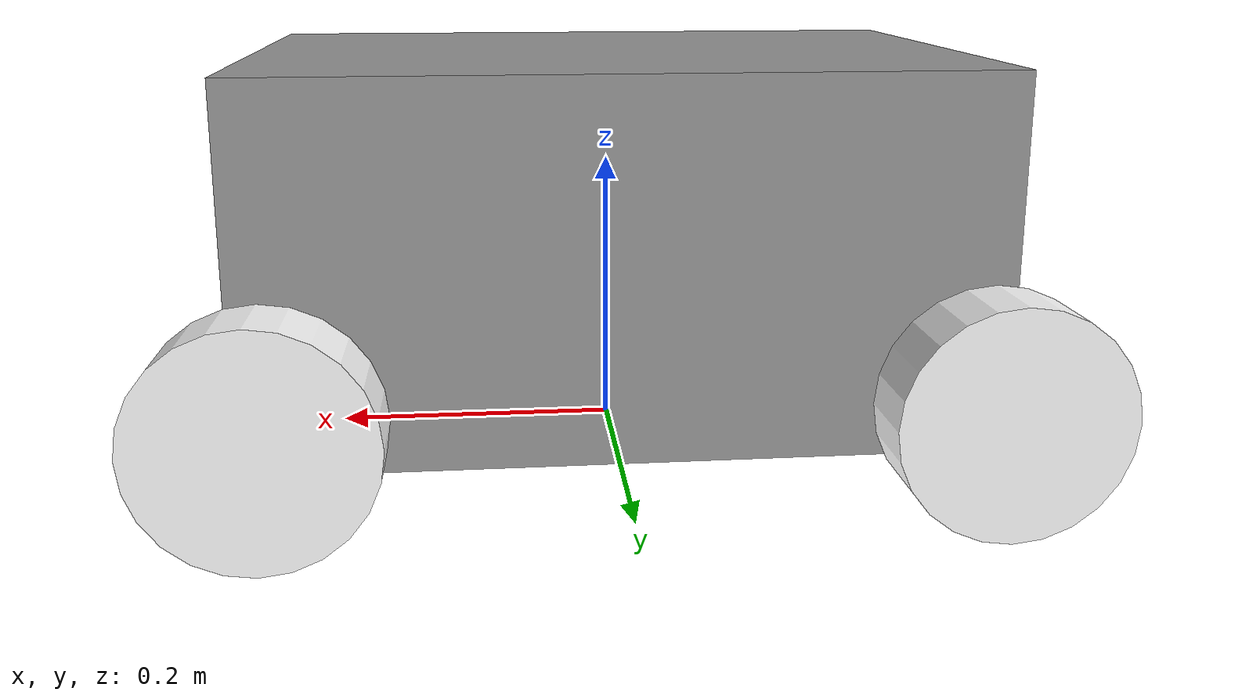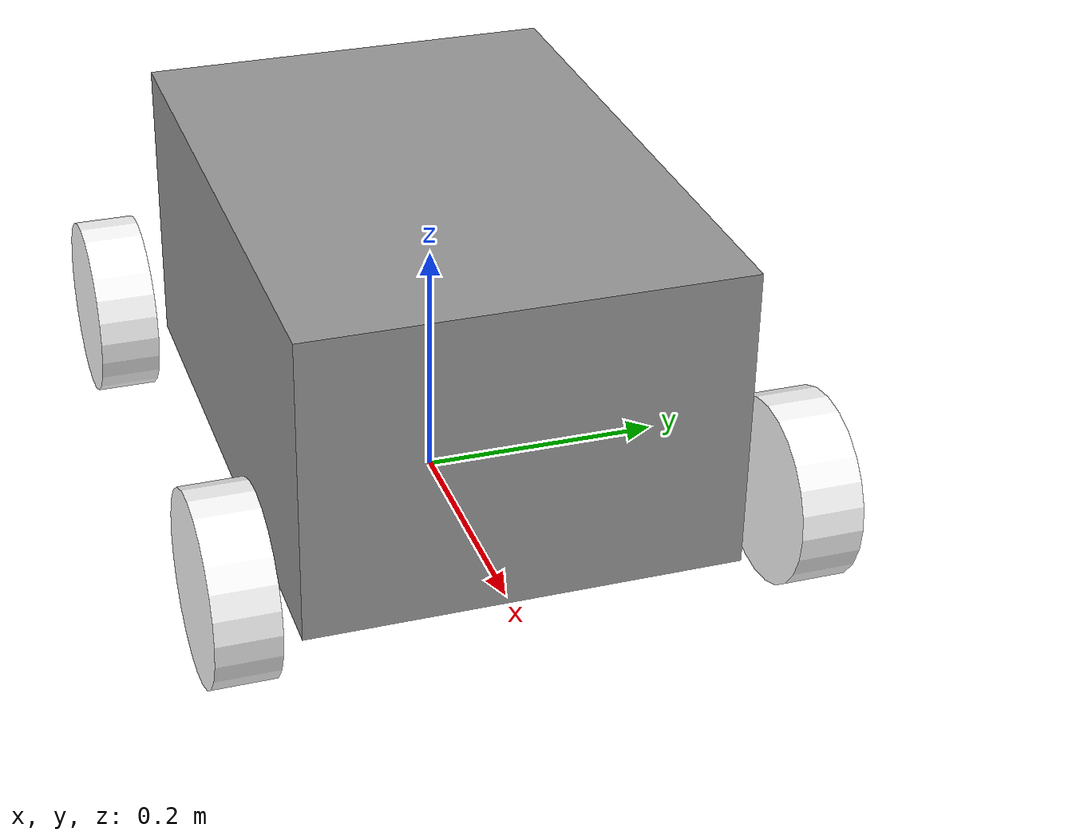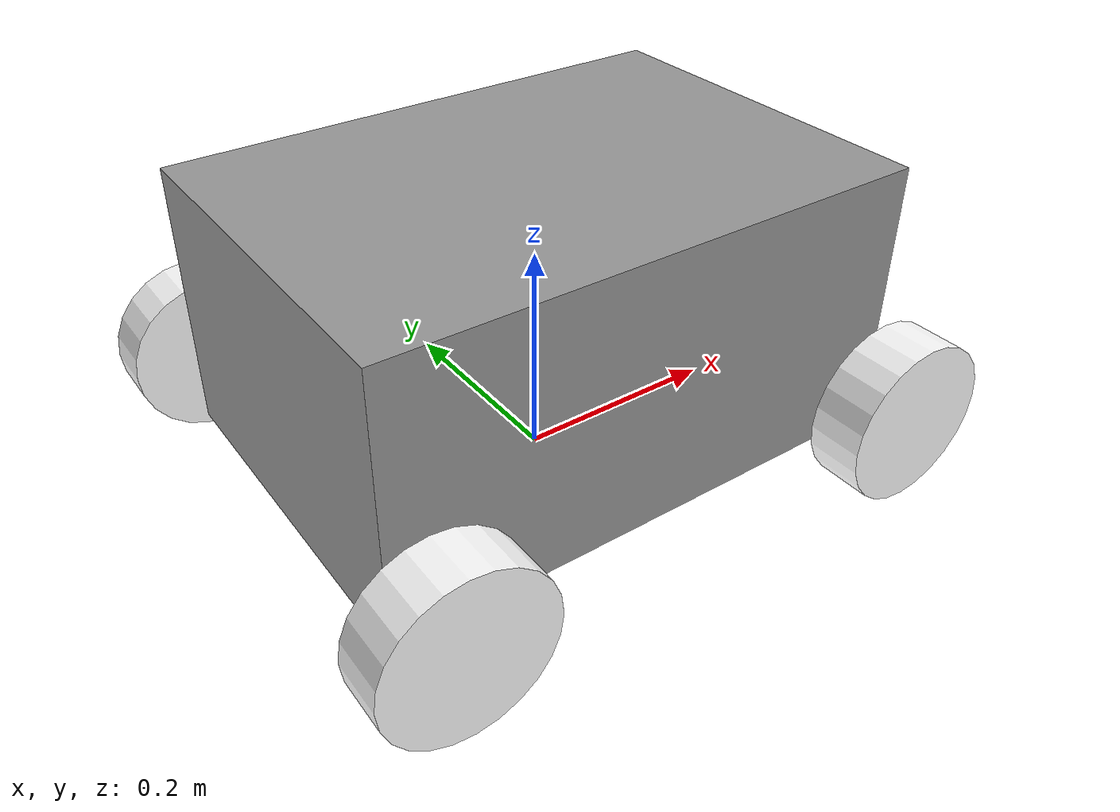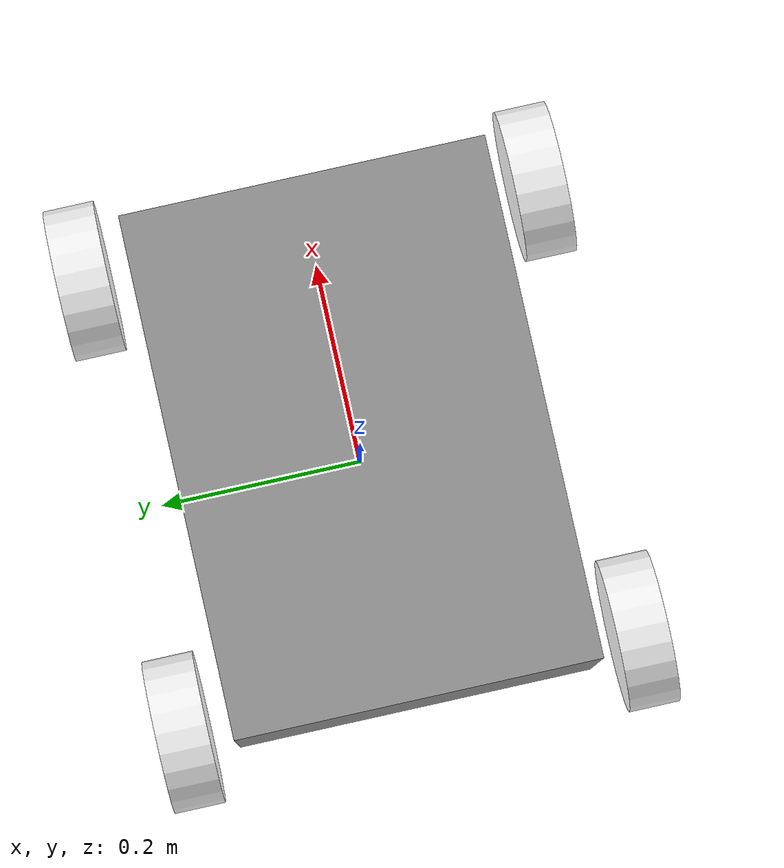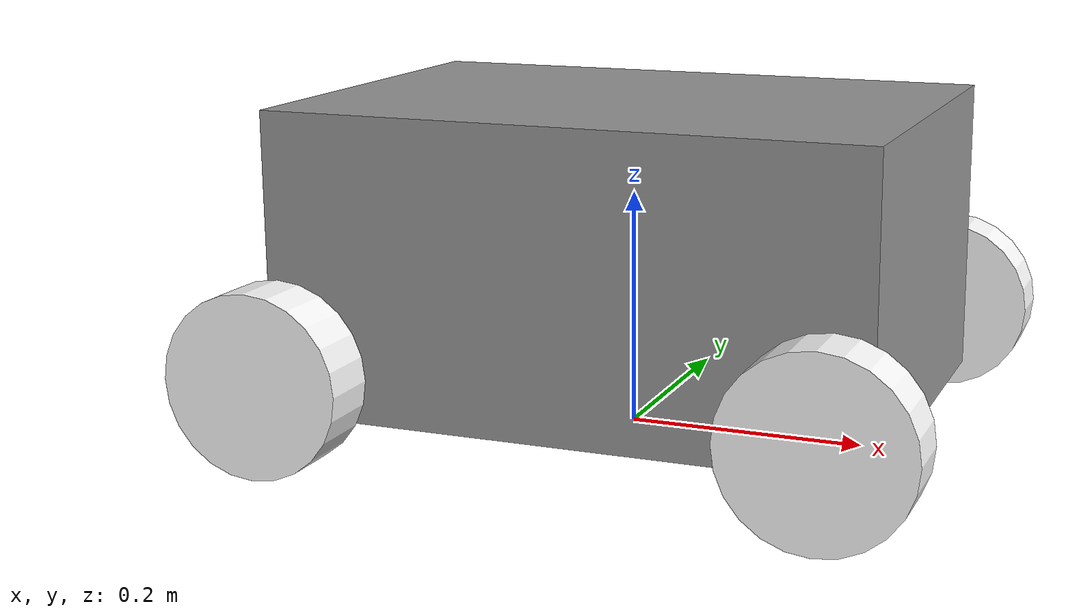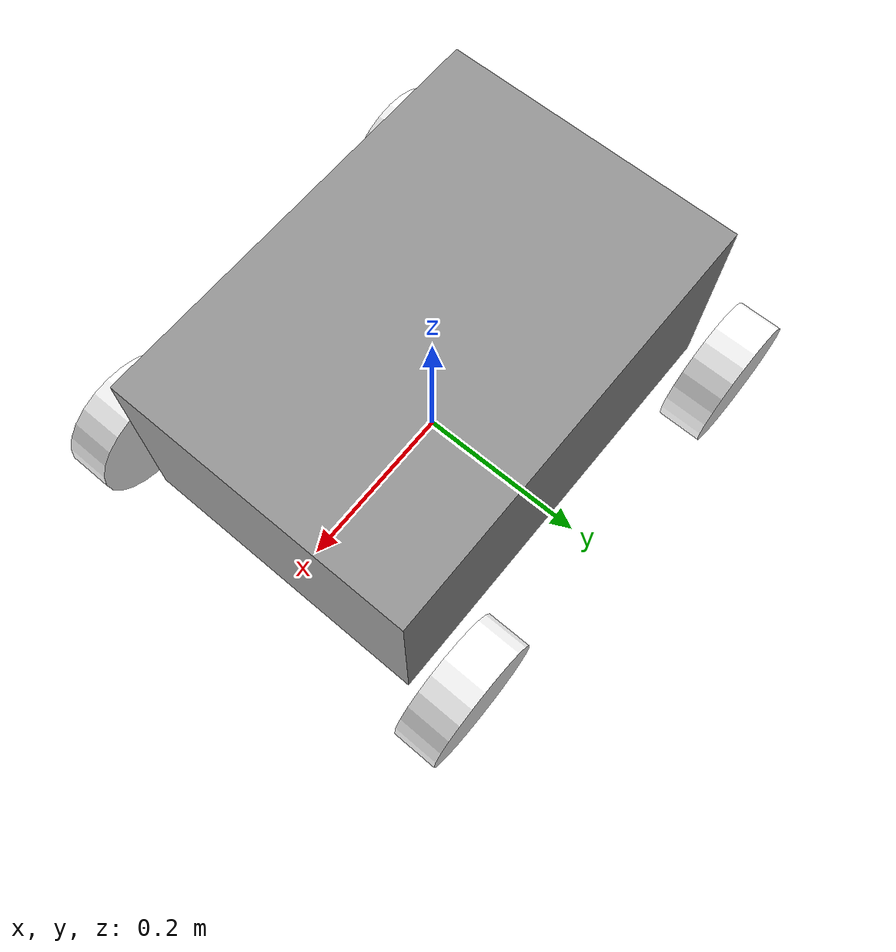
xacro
<?xml version="1.0"?>
<robot xmlns:xacro="http://www.ros.org/wiki/xacro" name="testbot">

  <xacro:macro name="box_inertia" params="b_mass b_length b_width b_height">
    <inertial>
      <mass value="${b_mass}"/>
      <inertia ixx="${b_mass*(b_length*b_length+b_height*b_height)/12}" ixy="0.0" ixz="0.0"
               iyy="${b_mass*(b_width*b_width+b_height*b_height)/12}" iyz="0.0"
               izz="${b_mass*(b_length*b_length+b_width*b_width)/12}"/>
    </inertial>
  </xacro:macro>

  <xacro:macro name="cylinder_inertia" params="c_mass c_radius c_height">
    <inertial>
      <origin xyz="0 0 0" />
      <mass value="${c_mass}"/>
      <inertia ixx="${c_mass*(3*c_radius*c_radius+c_height*c_height)/12}" ixy="0.0" ixz="0.0"
               izz="${c_mass*(3*c_radius*c_radius+c_height*c_height)/12}" iyz="0.0"
               iyy="${c_mass*c_radius*c_radius/2}"/>
    </inertial>
  </xacro:macro>

  <xacro:property name="base_link_mass" value="40.0" />
  <xacro:property name="base_link_length" value="0.35" />
  <xacro:property name="base_link_width" value="0.5" />
  <xacro:property name="base_link_height" value="0.25" />
  <xacro:property name="wheel_mass" value="5.0" />
  <xacro:property name="wheel_radius" value="0.075" />
  <xacro:property name="wheel_height" value="0.05" />
  <xacro:property name="wheelbase" value="0.45" />
  <xacro:property name="track" value="0.45" />
  <xacro:property name="clearance" value="0.03" />

  <link name="root_link">
  </link>

  <joint name="base_to_root" type="fixed">
    <parent link="root_link"/>
    <child link="base_link"/>
    <origin xyz="0 0 ${base_link_height/2+clearance}" rpy="0 0 0"/>
  </joint>

 <xacro:macro name="base_link_geometry">
    <geometry>
      <box size="${base_link_width} ${base_link_length} ${base_link_height}"/>
    </geometry>
    <origin xyz="0 0 0" rpy="0 0 0" />
  </xacro:macro>

  <link name="base_link">
    <visual>
      <xacro:base_link_geometry />
      <material name="grey">
        <color rgba="0.6 0.6 0.6 1"/>
      </material>
    </visual>
    <collision>
      <xacro:base_link_geometry />
    </collision>
    <xacro:box_inertia
     b_mass="${base_link_mass}"
     b_length="${base_link_length}"
     b_width="${base_link_width}"
     b_height="${base_link_height}"/>
  </link>
  <gazebo reference="base_link">
    <material>Gazebo/RustySteel</material>
  </gazebo>

  <xacro:macro name="wheel_joint" params="w_name origin_x origin_y origin_z geometry_yaw mu1 mu2">
    <link name="${w_name}_wheel">
      <visual>
        <geometry>
          <cylinder length="${wheel_height}" radius="${wheel_radius}"/>
        </geometry>
        <origin xyz="0 0 0" rpy="${pi/2} 0 0"/>
        <material name="black">
          <color rgba="1 1 1 1"/>
        </material>
      </visual>
      <collision>
        <geometry>
          <cylinder length="${wheel_height}" radius="${wheel_radius}"/>
        </geometry>
        <origin xyz="0 0 0" rpy="${pi/2} 0 0"/>
      </collision>
      <xacro:cylinder_inertia
        c_mass="${wheel_mass}"
        c_radius="${wheel_radius}"
        c_height="${wheel_height}"/>
    </link>

    <joint name="base_to_${w_name}_wheel" type="continuous">
      <parent link="base_link"/>
      <child link="${w_name}_wheel"/>
      <axis xyz="0 1 0"/>
      <origin xyz="${origin_x} ${origin_y} ${origin_z}" rpy="0 0 0"/>

    </joint>

    <gazebo reference="${w_name}_wheel">
      <mu1 value="${mu1}"/>
      <mu2 value="${mu2}"/>
      <fdir1 value="0 0 0"/>
      <maxContacts value="1"/>
      <turnGravityOff>false</turnGravityOff>
      <material>Gazebo/DarkGrey</material>
    </gazebo>

  </xacro:macro>

  <xacro:wheel_joint
    w_name="l_f"
    origin_y="${track/2}"
    origin_x="${wheelbase/2}"
    origin_z="${wheel_radius-base_link_height/2-clearance}"
    geometry_yaw="0"
    mu1="0.5"
    mu2="0.5"/>

  <xacro:wheel_joint
    w_name="l_r"
    origin_y="${track/2}"
    origin_x="${-wheelbase/2}"
    origin_z="${wheel_radius-base_link_height/2-clearance}"
    geometry_yaw="0"
    mu1="0.5"
    mu2="0.5"/>

  <xacro:wheel_joint
    w_name="r_f"
    origin_y="${-track/2}"
    origin_x="${wheelbase/2}"
    origin_z="${wheel_radius-base_link_height/2-clearance}"
    geometry_yaw="${pi}"
    mu1="0.5"
    mu2="0.5"/>

  <xacro:wheel_joint
    w_name="r_r"
    origin_y="${-track/2}"
    origin_x="${-wheelbase/2}"
    origin_z="${wheel_radius-base_link_height/2-clearance}"
    geometry_yaw="${pi}"
    mu1="0.5"
    mu2="0.5"/>

</robot>
